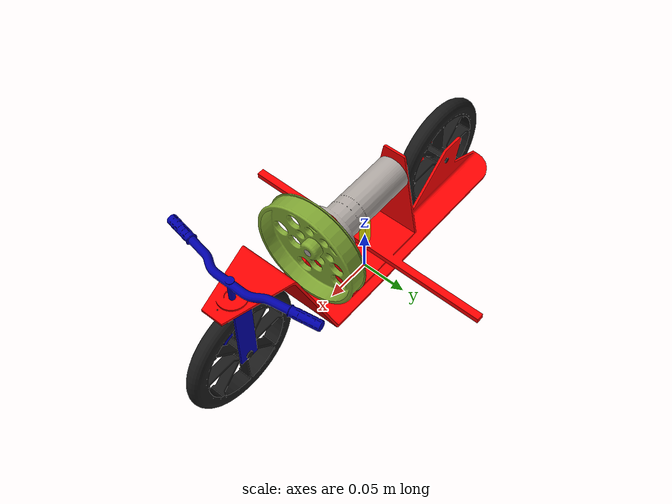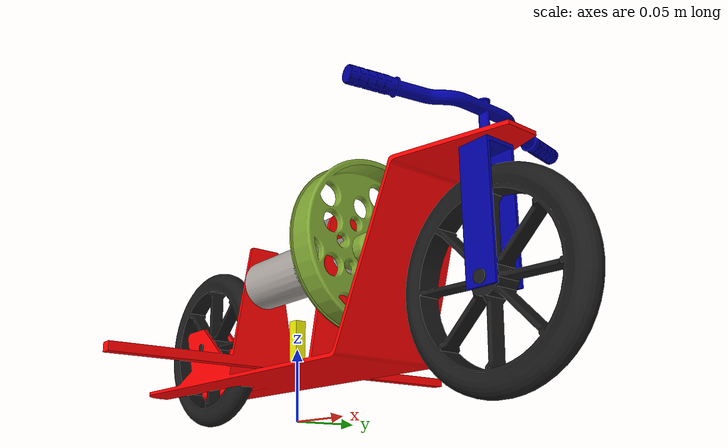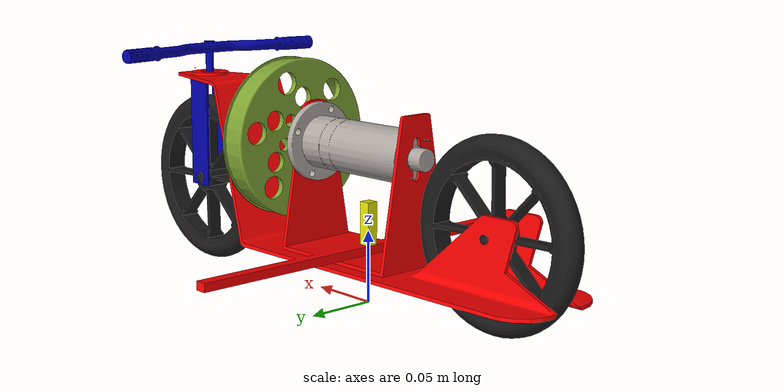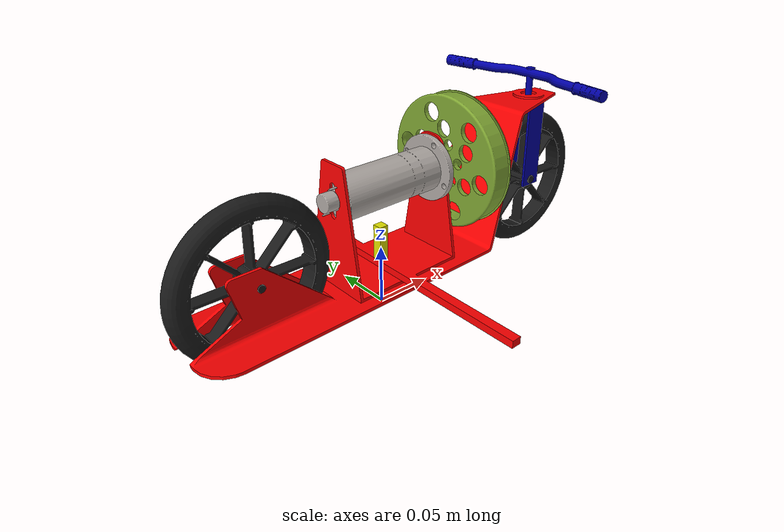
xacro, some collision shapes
<?xml version="1.0" encoding="utf-8"?>
<robot xmlns:xacro="http://www.ros.org/wiki/xacro" name="bike" >

  <xacro:include filename="$(find self_balancing_bike)/xacro/bike.material.xacro"/>
  <xacro:include filename="$(find self_balancing_bike)/xacro/bike.transmission.xacro"/>
  <xacro:include filename="$(find self_balancing_bike)/xacro/bike.sensors.xacro"/>

    <link name="base_footprint"/>
    <link
      name="base_link">
      <inertial>
        <origin
          xyz="0.0057072 9.0919E-05 0.020035"
          rpy="0 0 0" />
        <mass
          value="0.62387" />
        <inertia
          ixx="0.0013004"
          ixy="-4.102E-05"
          ixz="-0.000955"
          iyy="0.0050851"
          iyz="-9.3531E-06"
          izz="0.0050188" />
      </inertial>
      <visual>
        <origin
          xyz="0 0 0"
          rpy="0 0 0" />
        <geometry>
          <mesh
            filename="package://self_balancing_bike/meshes/base_link.STL" />
        </geometry>
        <material
          name="">
          <color
            rgba="1 0 0 1" />
        </material>
      </visual>
      <collision>
        <origin
          xyz="0 0 0"
          rpy="0 0 0" />
        <geometry>
          <mesh
            filename="package://self_balancing_bike/meshes/base_link.STL" />
        </geometry>
      </collision>
    </link>

    <joint
      name="base_footprint_joint"
      type="fixed">
      <origin
        xyz="0 0 0.0345"
        rpy="0 0 0" />
      <parent
        link="base_footprint" />
      <child
        link="base_link" />
    </joint>

    <link
      name="imu_link">
      <inertial>
        <origin
          xyz="-3.4694E-18 -1.6193E-05 -0.015"
          rpy="0 0 0" />
        <mass
          value="0.008832" />
        <inertia
          ixx="7.095E-07"
          ixy="-1.4027E-25"
          ixz="1.6502E-39"
          iyy="7.095E-07"
          iyz="1.697E-39"
          izz="9.4208E-08" />
      </inertial>
      <visual>
        <origin
          xyz="0 0 0"
          rpy="0 0 0" />
        <geometry>
          <mesh
            filename="package://self_balancing_bike/meshes/imu_link.STL" />
        </geometry>
        <material
          name="">
          <color
            rgba="0.9 0.9 0 1" />
        </material>
      </visual>
      <collision>
        <origin
          xyz="0 0 0"
          rpy="0 0 0" />
        <geometry>
          <mesh
            filename="package://self_balancing_bike/meshes/imu_link.STL" />
        </geometry>
      </collision>
    </link>
    <joint
      name="imu_joint"
      type="fixed">
      <origin
        xyz="0 0 0.036"
        rpy="0 0 0" />
      <parent
        link="base_link" />
      <child
        link="imu_link" />
      <axis
        xyz="0 0 0" />
    </joint>
    <link
      name="rear_wheel_link">
      <inertial>
        <origin
          xyz="5.7718E-14 6.0024E-13 -1.4024E-14"
          rpy="0 0 0" />
        <mass
          value="0.2475" />
        <inertia
          ixx="0.00028923"
          ixy="-1.546E-17"
          ixz="-3.4005E-15"
          iyy="0.00056923"
          iyz="-8.2688E-17"
          izz="0.00028923" />
      </inertial>
      <visual>
        <origin
          xyz="0 0 0"
          rpy="0 0 0" />
        <geometry>
          <mesh
            filename="package://self_balancing_bike/meshes/rear_wheel_link.STL" />
        </geometry>
        <material
          name="">
          <color
            rgba="0.1 0.1 0.1 1" />
        </material>
      </visual>
      <collision>
        <origin
          xyz="0 0 0"
          rpy="0 0 0" />
        <geometry>
          <mesh
            filename="package://self_balancing_bike/meshes/rear_wheel_link.STL" />
        </geometry>
      </collision>
    </link>
    <joint
      name="rear_wheel_joint"
      type="continuous">
      <origin
        xyz="-0.11568 -0.0010941 0.0325"
        rpy="0 0 0.0097934" />
      <parent
        link="base_link" />
      <child
        link="rear_wheel_link" />
      <axis
        xyz="0 1 0" />
      <limit
        effort="30"
        velocity="10.47" />
    </joint>
    <link
      name="handle_link">
      <inertial>
        <origin
          xyz="-0.0050512 -0.00029793 -0.028916"
          rpy="0 0 0" />
        <mass
          value="0.084166" />
        <inertia
          ixx="0.00015542"
          ixy="3.2034E-09"
          ixz="7.8858E-09"
          iyy="2.5174E-05"
          iyz="2.8994E-10"
          izz="0.00013607" />
      </inertial>
      <visual>
        <origin
          xyz="0 0 0"
          rpy="0 0 0" />
        <geometry>
          <mesh
            filename="package://self_balancing_bike/meshes/handle_link.STL" />
        </geometry>
        <material
          name="">
          <color
            rgba="0 0 0.65 1" />
        </material>
      </visual>
      <collision>
        <origin
          xyz="0 0 0"
          rpy="0 0 0" />
        <geometry>
          <mesh
            filename="package://self_balancing_bike/meshes/handle_link.STL" />
        </geometry>
      </collision>
    </link>
    <joint
      name="handle_joint"
      type="revolute">
      <origin
        xyz="0.17612 0.0017637 0.1325"
        rpy="0 0 0" />
      <parent
        link="base_link" />
      <child
        link="handle_link" />
      <axis
        xyz="0 0 -1" />
      <limit
        lower="-1.0472"
        upper="1.0472"
        effort="20"
        velocity="6.28" />
    </joint>
    <link
      name="front_wheel_link">
      <inertial>
        <origin
          xyz="5.7593E-14 6.0145E-13 -1.4981E-14"
          rpy="0 0 0" />
        <mass
          value="0.24701" />
        <inertia
          ixx="0.00028917"
          ixy="-1.6813E-17"
          ixz="-3.4026E-15"
          iyy="0.00056923"
          iyz="-8.2388E-17"
          izz="0.00028917" />
      </inertial>
      <visual>
        <origin
          xyz="0 0 0"
          rpy="0 0 0" />
        <geometry>
          <mesh
            filename="package://self_balancing_bike/meshes/front_wheel_link.STL" />
        </geometry>
        <material
          name="">
          <color
            rgba="0.1 0.1 0.1 1" />
        </material>
      </visual>
      <collision>
        <origin
          xyz="0 0 0"
          rpy="0 0 0" />
        <geometry>
          <mesh
            filename="package://self_balancing_bike/meshes/front_wheel_link.STL" />
        </geometry>
      </collision>
    </link>
    <joint
      name="front_wheel_joint"
      type="continuous">
      <origin
        xyz="-0.00022305 -2.5562E-05 -0.1042"
        rpy="0 0 0" />
      <parent
        link="handle_link" />
      <child
        link="front_wheel_link" />
      <axis
        xyz="0 1 0" />
    </joint>
    <link
      name="rw_motor_link">
      <inertial>
        <origin
          xyz="-0.012449 -0.00012011 1.0704E-06"
          rpy="0 0 0" />
        <mass
          value="0.49778" />
        <inertia
          ixx="9.1585E-05"
          ixy="-3.6499E-06"
          ixz="1.0994E-08"
          iyy="0.00046554"
          iyz="3.0638E-09"
          izz="0.00046557" />
      </inertial>
      <visual>
        <origin
          xyz="0 0 0"
          rpy="0 0 0" />
        <geometry>
          <mesh
            filename="package://self_balancing_bike/meshes/rw_motor_link.STL" />
        </geometry>
        <material
          name="">
          <color
            rgba="0.68627 0.65882 0.63922 1" />
        </material>
      </visual>
      <collision>
        <origin
          xyz="0 0 0"
          rpy="0 0 0" />
        <geometry>
          <mesh
            filename="package://self_balancing_bike/meshes/rw_motor_link.STL" />
        </geometry>
      </collision>
    </link>
    <joint
      name="rw_motor_joint"
      type="fixed">
      <origin
        xyz="0.0196 0.00023076 0.071352"
        rpy="0 0 0" />
      <parent
        link="base_link" />
      <child
        link="rw_motor_link" />
      <axis
        xyz="0 0 0" />
    </joint>
    <link
      name="rw_link">
      <inertial>
        <origin
          xyz="0.005098 4.471E-05 -1.9127E-06"
          rpy="0 0 0" />
        <mass
          value="0.41664" />
        <inertia
          ixx="0.00076419"
          ixy="3.5819E-06"
          ixz="-8.9815E-09"
          iyy="0.00039599"
          iyz="5.2898E-09"
          izz="0.00039595" />
      </inertial>
      <visual>
        <origin
          xyz="0 0 0"
          rpy="0 0 0" />
        <geometry>
          <mesh
            filename="package://self_balancing_bike/meshes/rw_link.STL" />
        </geometry>
        <material
          name="">
          <color
            rgba="0.5 0.65 0.2 1" />
        </material>
      </visual>
      <collision>
        <origin
          xyz="0 0 0"
          rpy="0 0 0" />
        <geometry>
          <mesh
            filename="package://self_balancing_bike/meshes/rw_link.STL" />
        </geometry>
      </collision>
    </link>
    <joint
      name="rw_joint"
      type="continuous">
      <origin
        xyz="0.047915 0.00046926 0"
        rpy="0 0 0" />
      <parent
        link="rw_motor_link" />
      <child
        link="rw_link" />
      <axis
        xyz="0.99995 0.0097932 0" />
      <limit
        effort="100"
        velocity="25" />
      <dynamics
        damping="0.00001"
        friction="0.00004" />
    </joint>

</robot>

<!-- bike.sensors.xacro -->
<robot name="bike_sensors" xmlns:xacro="http://www.ros.org/wiki/xacro">

    <!-- Specifying Lidar and IMU sensors -->
    <gazebo reference="imu_link">
        <sensor type="imu" name="imu">
        <always_on>true</always_on>
        <visualize>true</visualize>
        </sensor>
        <material>Gazebo/FlatBlack</material>
    </gazebo>

    <gazebo>
        <plugin name="imu_plugin" filename="libgazebo_ros_imu.so">
        <alwaysOn>true</alwaysOn>
        <bodyName>imu_link</bodyName>
        <frameName>imu_link</frameName>
        <topicName>imu</topicName>
        <serviceName>imu_service</serviceName>
        <gaussianNoise>0.0</gaussianNoise>
        <updateRate>0</updateRate>
        <imu>
            <noise>
            <type>gaussian</type>
            <rate>
                <mean>0.0</mean>
                <stddev>2e-4</stddev>
                <bias_mean>0.0000075</bias_mean>
                <bias_stddev>0.0000008</bias_stddev>
            </rate>
            <accel>
                <mean>0.0</mean>
                <stddev>1.7e-2</stddev>
                <bias_mean>0.1</bias_mean>
                <bias_stddev>0.001</bias_stddev>
            </accel>
            </noise>
        </imu>
        </plugin>
    </gazebo>

    <link name="lidar_link">
        <visual>
        <origin xyz="0 0 0.0" rpy="0 0 0"/>
        <geometry>
            <mesh filename="package://self_balancing_bike/meshes/lidar_link.stl" scale="10e-5 10e-5 10e-5"/>
        </geometry>
        </visual>

        <collision>
        <origin xyz="0.00015 0 -0.000065" rpy="0 0 0"/>
        <geometry>
            <cylinder length="0.000315" radius="0.00055"/>
        </geometry>
        </collision>

        <inertial>
        <mass value="0.00114" />
        <origin xyz="0 0 0" />
        <inertia ixx="0.00001" ixy="0.0" ixz="0.0"
                iyy="0.00001" iyz="0.0"
                izz="0.00001" />
        </inertial>
    </link>

    <joint name="lidar_joint" type="fixed">
        <parent link="base_link"/>
        <child link="lidar_link"/>
        <origin xyz="0.194 0.0025 0.1105" rpy="0 0 0"/>
    </joint>

    <gazebo reference="lidar_link">
        <material>Gazebo/FlatBlack</material>
        <sensor type="ray" name="lds_lfcd_sensor">
        <pose>0 0 0 0 0 0</pose>
        <visualize>false</visualize>
        <update_rate>5</update_rate>
        <ray>
            <scan>
            <horizontal>
                <samples>180</samples>
                <resolution>1</resolution>
                <min_angle>-1.57</min_angle>
                <max_angle>1.57</max_angle>
            </horizontal>
            </scan>
            <range>
            <min>0.05</min>
            <max>10</max>
            <resolution>0.015</resolution>
            </range>
            <noise>
            <type>gaussian</type>
            <mean>0.0</mean>
            <stddev>0.01</stddev>
            </noise>
        </ray>
        <plugin name="gazebo_ros_lds_lfcd_controller" filename="libgazebo_ros_laser.so">
            <topicName>scan</topicName>
            <frameName>lidar_link</frameName>
        </plugin>
        </sensor>
    </gazebo>

</robot>
